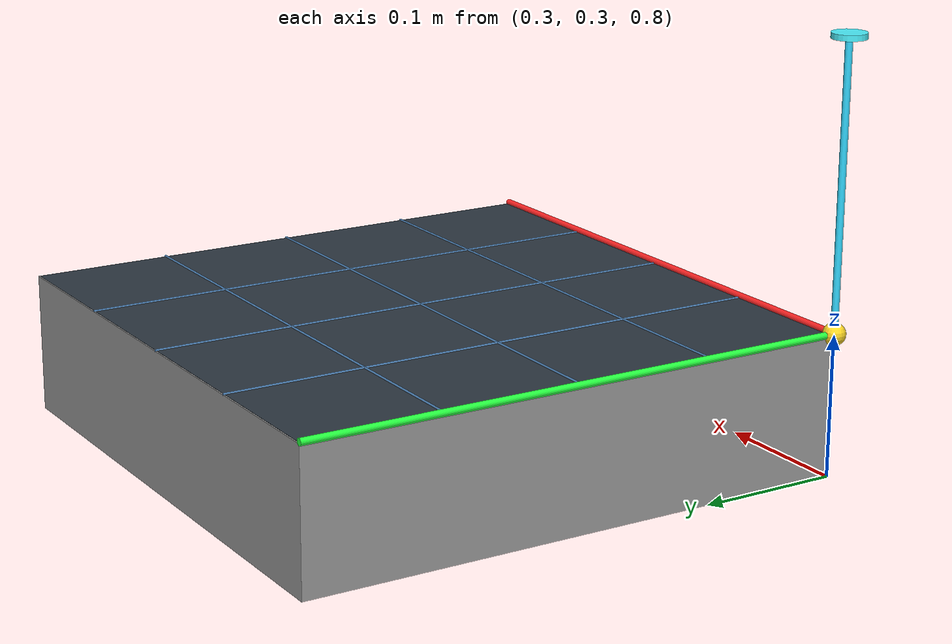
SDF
<?xml version="1.0" ?>
<sdf version="1.6">
  <world name="industrial_workspace">

    <!-- Physics parameters: 1000 Hz real-time step (1ms CSP) -->
    <physics type="ode">
      <max_step_size>0.001</max_step_size>
      <real_time_factor>1.0</real_time_factor>
      <real_time_update_rate>1000.0</real_time_update_rate>
      <ode>
        <solver>
          <type>quick</type>
          <iters>50</iters>
          <sor>1.3</sor>
        </solver>
        <constraints>
          <cfm>0.00001</cfm>
          <erp>0.8</erp>
          <contact_max_correcting_vel>100.0</contact_max_correcting_vel>
          <contact_surface_layer>0.001</contact_surface_layer>
        </constraints>
      </ode>
    </physics>

    <!-- Clean balanced scene with standard ground grid and soft lighting -->
    <scene>
      <ambient>0.5 0.5 0.5 1.0</ambient>
      <background>0.75 0.80 0.85 1.0</background>
      <shadows>false</shadows>
      <grid>true</grid>
    </scene>

    <!-- Gazebo GUI with dynamic CNC toolpath drawing plugin and angled top-down camera view -->
    <gui fullscreen='0'>
      <plugin name='gazebo_toolpath_plugin' filename='libgazebo_toolpath_plugin.so'/>
      <camera name='user_camera'>
        <pose>0.50 0.05 1.55 0 1.05 1.570796</pose>
        <view_controller>orbit</view_controller>
      </camera>
    </gui>

    <!-- Standard sun -->
    <include>
      <uri>model://sun</uri>
    </include>

    <!-- Standard ground plane -->
    <include>
      <uri>model://ground_plane</uri>
    </include>

    <!-- Precision Machined Workpiece (400x400x100mm = 10cm thick) on Machine Table (Table Z=0.80m) -->
    <model name="machining_workpiece">
      <static>true</static>
      <pose>0.50 0.50 0.850 0 0 0</pose>
      <link name="workpiece_link">
        <!-- Main Workpiece Billet (400x400x100mm) - Top Surface at Z = 0.90m -->
        <visual name="workpiece_visual">
          <geometry>
            <box>
              <size>0.40 0.40 0.10</size>
            </box>
          </geometry>
          <material>
            <script>
              <uri>file://media/materials/scripts/gazebo.material</uri>
              <name>Gazebo/Grey</name>
            </script>
          </material>
        </visual>

        <!-- Coordinate Grid Surface Plate (Dark Slate with Oxy Grid) -->
        <visual name="workpiece_grid_plate">
          <pose>0 0 0.0501 0 0 0</pose>
          <geometry>
            <box>
              <size>0.398 0.398 0.0002</size>
            </box>
          </geometry>
          <material>
            <ambient>0.12 0.15 0.18 1.0</ambient>
            <diffuse>0.18 0.22 0.26 1.0</diffuse>
          </material>
        </visual>

        <!-- Origin O(0,0,0) Marker (Gold Sphere at Top Corner of Workpiece) -->
        <visual name="origin_sphere">
          <pose>-0.20 -0.20 0.051 0 0 0</pose>
          <geometry>
            <sphere>
              <radius>0.008</radius>
            </sphere>
          </geometry>
          <material>
            <ambient>0.95 0.75 0.1 1.0</ambient>
            <diffuse>1.0 0.85 0.15 1.0</diffuse>
            <emissive>0.6 0.45 0.05 1.0</emissive>
          </material>
        </visual>

        <!-- +X Primary Axis Vector (Full Red Bar along X edge - 400mm) -->
        <visual name="axis_x_arrow">
          <pose>0 -0.20 0.051 0 1.570796 0</pose>
          <geometry>
            <cylinder>
              <radius>0.0025</radius>
              <length>0.40</length>
            </cylinder>
          </geometry>
          <material>
            <ambient>0.95 0.1 0.1 1.0</ambient>
            <diffuse>1.0 0.15 0.15 1.0</diffuse>
            <emissive>0.7 0.05 0.05 1.0</emissive>
          </material>
        </visual>

        <!-- +Y Primary Axis Vector (Full Green Bar along Y edge - 400mm) -->
        <visual name="axis_y_arrow">
          <pose>-0.20 0 0.051 -1.570796 0 0</pose>
          <geometry>
            <cylinder>
              <radius>0.0025</radius>
              <length>0.40</length>
            </cylinder>
          </geometry>
          <material>
            <ambient>0.1 0.9 0.2 1.0</ambient>
            <diffuse>0.15 1.0 0.25 1.0</diffuse>
            <emissive>0.05 0.6 0.1 1.0</emissive>
          </material>
        </visual>

        <!-- +Z Primary Axis Vector (Blue Column pointing up 200mm to Home Sensor Origin O(0,0,0)) -->
        <visual name="axis_z_home_line">
          <pose>-0.20 -0.20 0.151 0 0 0</pose>
          <geometry>
            <cylinder>
              <radius>0.0025</radius>
              <length>0.20</length>
            </cylinder>
          </geometry>
          <material>
            <ambient>0.1 0.7 1.0 1.0</ambient>
            <diffuse>0.2 0.85 1.0 1.0</diffuse>
            <emissive>0.2 0.6 0.9 1.0</emissive>
          </material>
        </visual>

        <!-- Home Target Marker at Z = 0.0mm (20cm directly above workpiece corner) -->
        <visual name="home_target_marker">
          <pose>-0.20 -0.20 0.251 0 0 0</pose>
          <geometry>
            <cylinder>
              <radius>0.012</radius>
              <length>0.004</length>
            </cylinder>
          </geometry>
          <material>
            <ambient>0.2 0.85 1.0 1.0</ambient>
            <diffuse>0.3 0.95 1.0 1.0</diffuse>
            <emissive>0.3 0.7 1.0 1.0</emissive>
          </material>
        </visual>

        <!-- Surface Grid Line X=100mm -->
        <visual name="grid_line_x100">
          <pose>-0.10 0 0.0503 -1.570796 0 0</pose>
          <geometry>
            <cylinder>
              <radius>0.0008</radius>
              <length>0.40</length>
            </cylinder>
          </geometry>
          <material>
            <ambient>0.3 0.5 0.7 1.0</ambient>
            <diffuse>0.3 0.5 0.7 1.0</diffuse>
          </material>
        </visual>
        <!-- Surface Grid Line X=200mm -->
        <visual name="grid_line_x200">
          <pose>0 0 0.0503 -1.570796 0 0</pose>
          <geometry>
            <cylinder>
              <radius>0.0008</radius>
              <length>0.40</length>
            </cylinder>
          </geometry>
          <material>
            <ambient>0.3 0.5 0.7 1.0</ambient>
            <diffuse>0.3 0.5 0.7 1.0</diffuse>
          </material>
        </visual>
        <!-- Surface Grid Line X=300mm -->
        <visual name="grid_line_x300">
          <pose>0.10 0 0.0503 -1.570796 0 0</pose>
          <geometry>
            <cylinder>
              <radius>0.0008</radius>
              <length>0.40</length>
            </cylinder>
          </geometry>
          <material>
            <ambient>0.3 0.5 0.7 1.0</ambient>
            <diffuse>0.3 0.5 0.7 1.0</diffuse>
          </material>
        </visual>

        <!-- Surface Grid Line Y=100mm -->
        <visual name="grid_line_y100">
          <pose>0 -0.10 0.0503 0 1.570796 0</pose>
          <geometry>
            <cylinder>
              <radius>0.0008</radius>
              <length>0.40</length>
            </cylinder>
          </geometry>
          <material>
            <ambient>0.3 0.5 0.7 1.0</ambient>
            <diffuse>0.3 0.5 0.7 1.0</diffuse>
          </material>
        </visual>
        <!-- Surface Grid Line Y=200mm -->
        <visual name="grid_line_y200">
          <pose>0 0 0.0503 0 1.570796 0</pose>
          <geometry>
            <cylinder>
              <radius>0.0008</radius>
              <length>0.40</length>
            </cylinder>
          </geometry>
          <material>
            <ambient>0.3 0.5 0.7 1.0</ambient>
            <diffuse>0.3 0.5 0.7 1.0</diffuse>
          </material>
        </visual>
        <!-- Surface Grid Line Y=300mm -->
        <visual name="grid_line_y300">
          <pose>0 0.10 0.0503 0 1.570796 0</pose>
          <geometry>
            <cylinder>
              <radius>0.0008</radius>
              <length>0.40</length>
            </cylinder>
          </geometry>
          <material>
            <ambient>0.3 0.5 0.7 1.0</ambient>
            <diffuse>0.3 0.5 0.7 1.0</diffuse>
          </material>
        </visual>

        <!-- Non-interfering Optical Workpiece Plane -->
        <collision name="workpiece_collision">
          <geometry>
            <box>
              <size>0.40 0.40 0.10</size>
            </box>
          </geometry>
          <surface>
            <contact>
              <collide_bitmask>0x0000</collide_bitmask>
              <ode>
                <kp>1000.0</kp>
                <kd>1.0</kd>
                <min_depth>0.001</min_depth>
                <max_vel>0.0</max_vel>
              </ode>
            </contact>
            <friction>
              <ode>
                <mu>0.0</mu>
                <mu2>0.0</mu2>
              </ode>
            </friction>
          </surface>
        </collision>
      </link>
    </model>

  </world>
</sdf>
